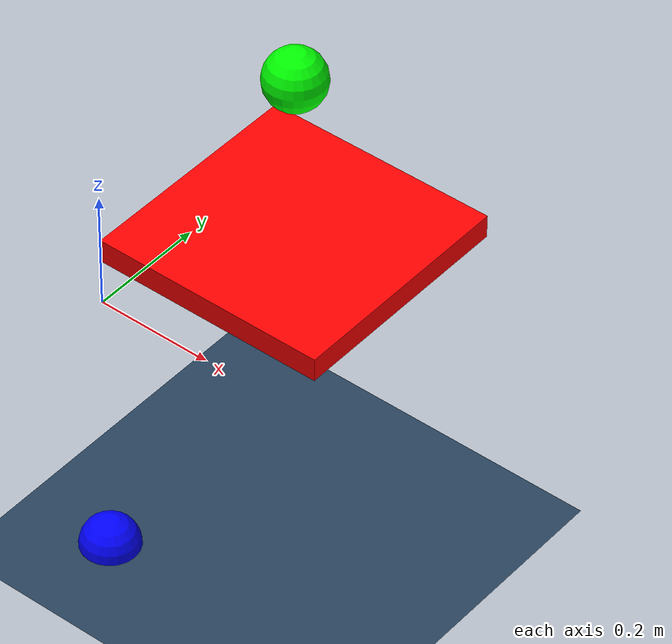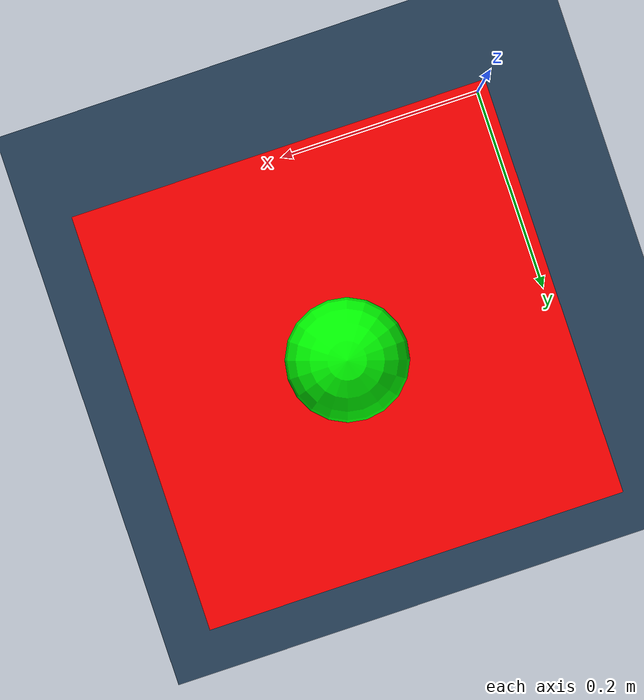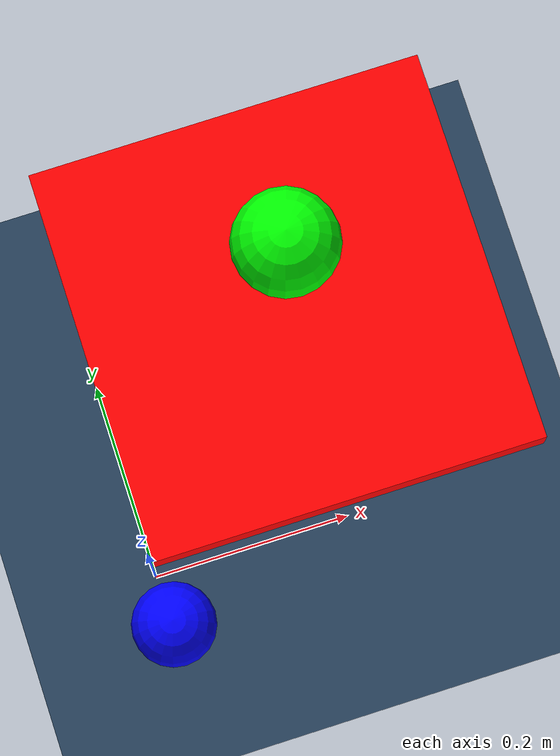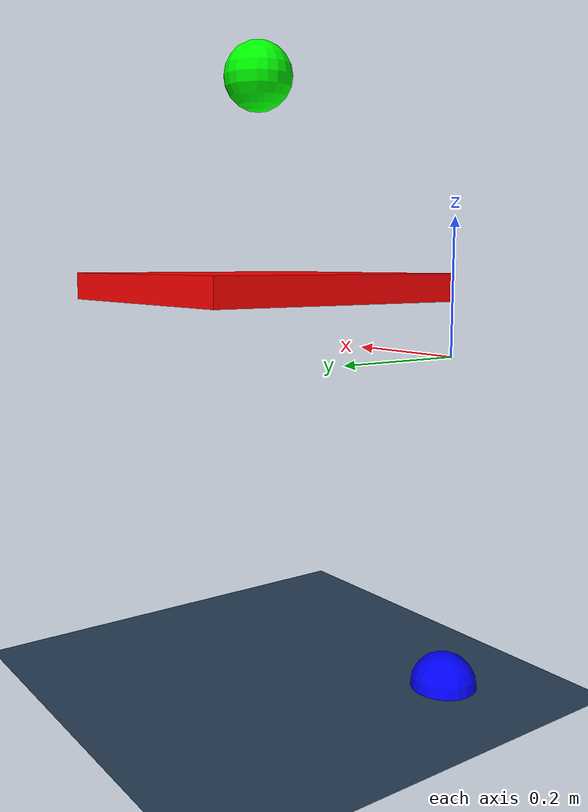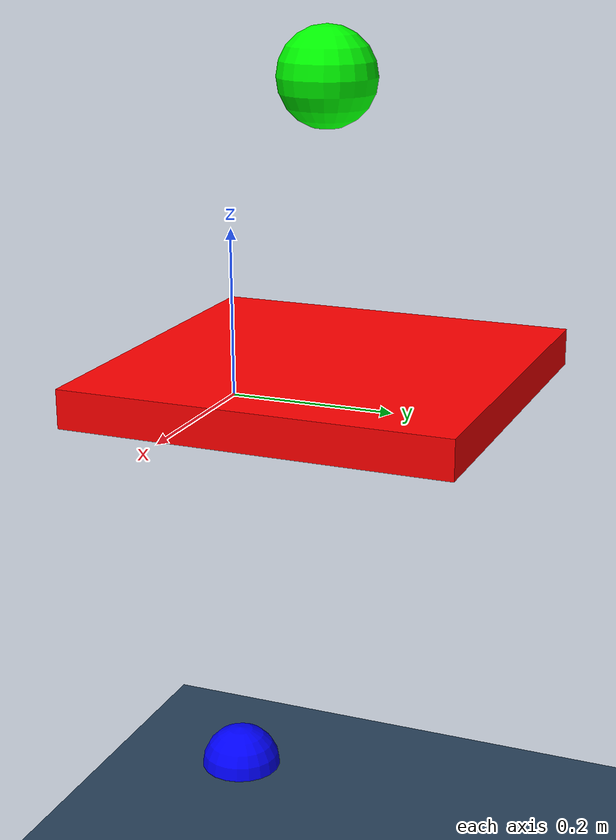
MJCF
<mujoco>
  <asset>
    <texture name="grid" type="2d" builtin="checker" rgb1=".1 .2 .3"
     rgb2=".2 .3 .4" width="300" height="300" mark="none"/>
    <material name="grid" texture="grid" texrepeat="1 1"
     texuniform="true" reflectance=".2"/>
  </asset>

  <worldbody>
    <light name="light" pos="0 0 1"/>
    <geom name="floor" type="plane" pos="0 0 -.5" size="2 2 .1" material="grid"/>
    <camera name="fixed" pos="0 -1.3 .5" xyaxes="1 0 0 0 1 2"/>
    <body name="box" pos=".2 .2 .1">
      <joint name="rotate_x" pos="0 0 0" axis="1 0 0" range="-.25 .25" damping="20" />
      <joint name="rotate_y" pos="0 0 0" axis="0 1 0" range="-.25 .25" damping="20" />
      <geom name="box" type="box" size=".2 .2 .02" rgba="1 0 0 1"/>
    </body>
    <body name="ball" pos=".2 .2 .4">
      <freejoint name="ball"/>
      <geom name="ball" pos="0 0 0" size=".05" rgba="0 1 0 1"/>
    </body>
    <!-- Add this block for the target position visualization -->
    <body name="target" pos="0 0 -0.5">
      <geom name="target_geom" type="sphere" size="0.05" rgba="0 0 1 1"/>
    </body>
  </worldbody>

  <actuator>
    <general name="act_x" joint="rotate_x" ctrlrange="-1 1" gainprm="1000 0 0" />
    <general name="act_y" joint="rotate_y" ctrlrange="-1 1" gainprm="1000 0 0" />
  </actuator>
</mujoco>
